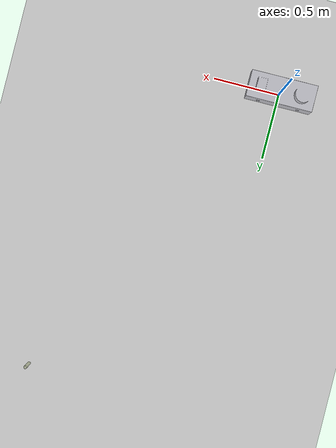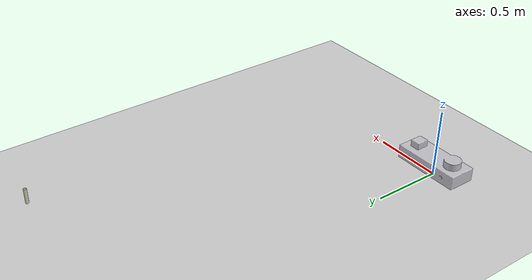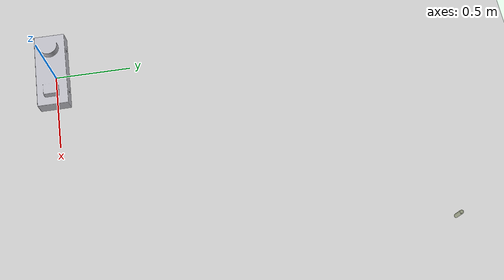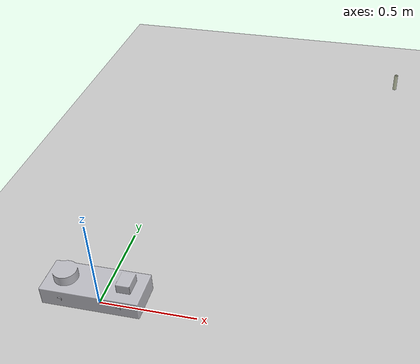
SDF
<sdf version="1.7">
 <world name="default">
  <light name="sun" type="directional">
   <pose>0 0 10 0 -0 0</pose>
   <diffuse>0.8 0.8 0.8 1</diffuse>
   <specular>0.2 0.2 0.2 1</specular>
   <attenuation>
    <range>1000</range>
    <constant>0.9</constant>
    <linear>0.01</linear>
    <quadratic>0.001</quadratic>
   </attenuation>
   <direction>-0.5 0.1 -0.9</direction>
   <spot><inner_angle>0</inner_angle><outer_angle>0</outer_angle><falloff>0</falloff></spot>
  </light>
  <model name="ground_plane">
   <static>1</static>
   <link name="link">
    <collision name="collision">
     <geometry><plane><normal>0 0 1</normal><size>100 100</size></plane></geometry>
     <surface>
      <contact><collide_bitmask>65535</collide_bitmask></contact>
      <friction><ode><mu>100</mu><mu2>50</mu2></ode></friction>
     </surface>
    </collision>
    <visual name="visual">
     <cast_shadows>0</cast_shadows>
     <geometry><plane><normal>0 0 1</normal><size>100 100</size></plane></geometry>
     <material>
      <script><uri>file://media/materials/scripts/gazebo.material</uri><name>Gazebo/Grey</name></script>
     </material>
    </visual>
   </link>
  </model>
  <gravity>0 0 -9.8</gravity>
  <magnetic_field>6e-06 2.3e-05 -4.2e-05</magnetic_field>
  <atmosphere type="adiabatic"/>
  <physics type="ode">
   <max_step_size>0.001</max_step_size>
   <real_time_factor>1</real_time_factor>
   <real_time_update_rate>1000</real_time_update_rate>
  </physics>
  <scene><ambient>0.4 0.4 0.4 1</ambient><background>0.7 0.7 0.7 1</background><shadows>1</shadows></scene>
  <spherical_coordinates>
   <surface_model>EARTH_WGS84</surface_model>
   <latitude_deg>0</latitude_deg>
   <longitude_deg>0</longitude_deg>
   <elevation>0</elevation>
   <heading_deg>0</heading_deg>
  </spherical_coordinates>
  <model name="hexa_pipe_line">
   <link name="base_link">
    <inertial>
     <pose>2.13625 1.25 0.5 0 -0 0</pose>
     <mass>359.355</mass>
     <inertia><ixx>533.113</ixx><ixy>0</ixy><ixz>0</ixz><iyy>328.309</iyy><iyz>0</iyz><izz>765.22</izz></inertia>
    </inertial>
    <collision name="base_link_collision">
     <geometry>
      <mesh>
       <scale>0.001 0.001 0.001</scale>
       <uri>/home/ajetayrus/casestudy_ws/src/hexa_pipe_line_description/meshes/base_link.stl</uri>
      </mesh>
     </geometry>
     <surface><friction><ode><mu>0.2</mu><mu2>0.2</mu2></ode></friction></surface>
    </collision>
    <visual name="base_link_visual">
     <geometry>
      <mesh>
       <scale>0.001 0.001 0.001</scale>
       <uri>/home/ajetayrus/casestudy_ws/src/hexa_pipe_line_description/meshes/base_link.stl</uri>
      </mesh>
     </geometry>
     <material>
      <script><name>Gazebo/Silver</name><uri>file://media/materials/scripts/gazebo.material</uri></script>
     </material>
    </visual>
    <self_collide>1</self_collide>
   </link>
   <static>0</static>
   <plugin name="control" filename="libgazebo_ros_control.so"><robotNamespace>/</robotNamespace></plugin>
  </model>
  <model name="tube_2_25cm">
   <link name="link">
    <pose>0 0 0.05725 0 -0 0</pose>
    <inertial>
     <mass>0.0354</mass>
     <inertia>
      <ixx>4.11781e-05</ixx>
      <ixy>0</ixy>
      <ixz>0</ixz>
      <iyy>4.11781e-05</iyy>
      <iyz>0</iyz>
      <izz>5.00578e-06</izz>
     </inertia>
    </inertial>
    <collision name="collision">
     <geometry><mesh><uri>model://tube_2_25cm/meshes/tube_2_25.dae</uri></mesh></geometry>
     <surface>
      <contact>
       <poissons_ratio>0.305</poissons_ratio>
       <elastic_modulus>2e+11</elastic_modulus>
       <ode><kp>100000</kp><kd>100</kd><max_vel>100</max_vel><min_depth>0.001</min_depth></ode>
      </contact>
      <friction>
       <torsional>
        <coefficient>1</coefficient>
        <use_patch_radius>0</use_patch_radius>
        <surface_radius>0.01</surface_radius>
       </torsional>
      </friction>
     </surface>
    </collision>
    <visual name="visual">
     <geometry><mesh><uri>model://tube_2_25cm/meshes/tube_2_25.dae</uri></mesh></geometry>
    </visual>
   </link>
   <pose>1.33418 2.43778 0 0 -0 0</pose>
  </model>
 </world>
</sdf>
